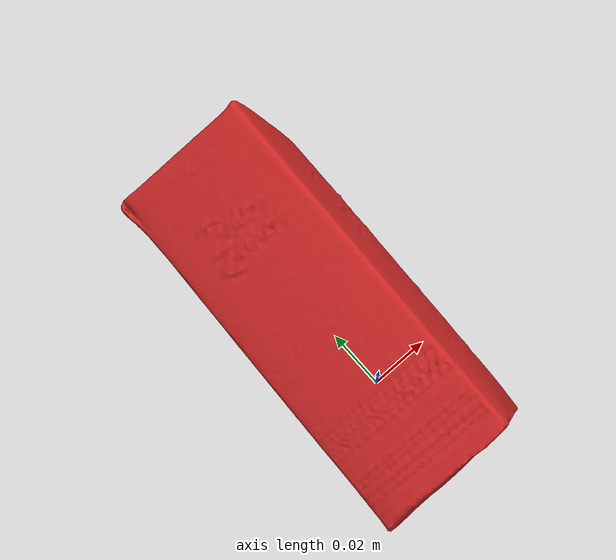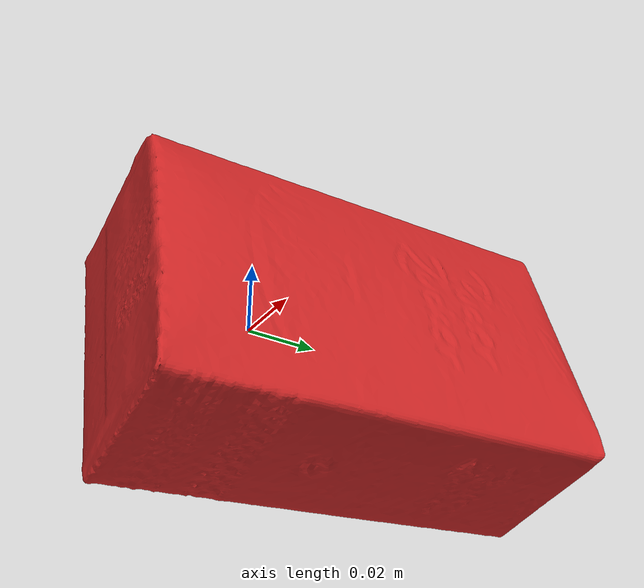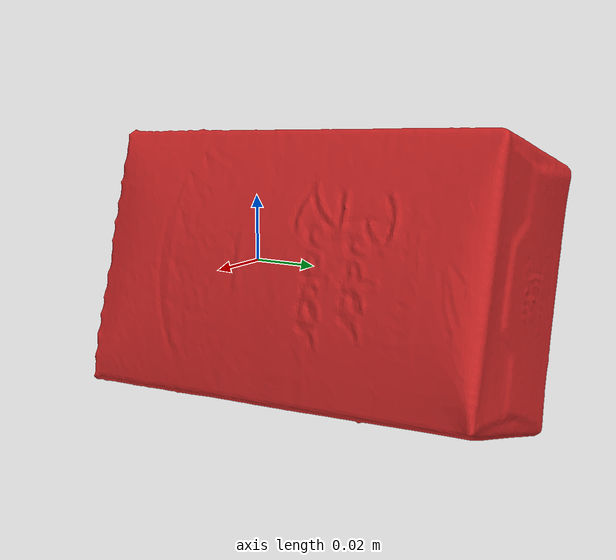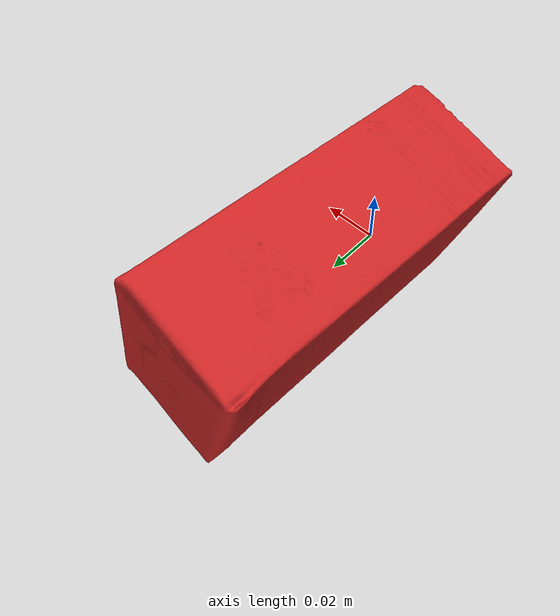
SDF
<?xml version='1.0'?>
<sdf version="1.4">
  <model name="PowderedSugar">
    <static>false</static>
    <link name="link">
      <inertial>
        <pose>0.005136420064139927 0.026664884121577713 -0.0012784578920986406 -1.613278651476364 0.28738704910292145 3.1081523062388543</pose>
        <mass>0.04931560242450899</mass>
        <inertia>
          <ixx>9.05489697306939e-05</ixx>
          <ixy>1.5373509887939416e-20</ixy>
          <ixz>2.348292564529604e-21</ixz>
          <iyy>7.613184828685674e-05</iyy>
          <iyz>1.362506997818795e-20</iyz>
          <izz>3.443397504966689e-05</izz>
        </inertia>
      </inertial>
      <collision name="collision">
        <geometry>
          <mesh>
            <!-- Use a downsampled mesh for collisions -->
            <uri>model:///PowderedSugar/PowderedSugar_250_collision.obj</uri>
	        </mesh>
        </geometry>
        <surface>
      </surface>
      </collision>
      <visual name="visual">
        <geometry>
          <mesh>
            <uri>model:///PowderedSugar/PowderedSugar_25k_tex.obj</uri>
	        </mesh>
        </geometry>
        <material>
          <script>
            <uri>model:///PowderedSugar/PowderedSugar.material</uri>
            <name>PowderedSugar</name>
          </script>
        </material>
      </visual>
    </link>
  </model>
</sdf>
